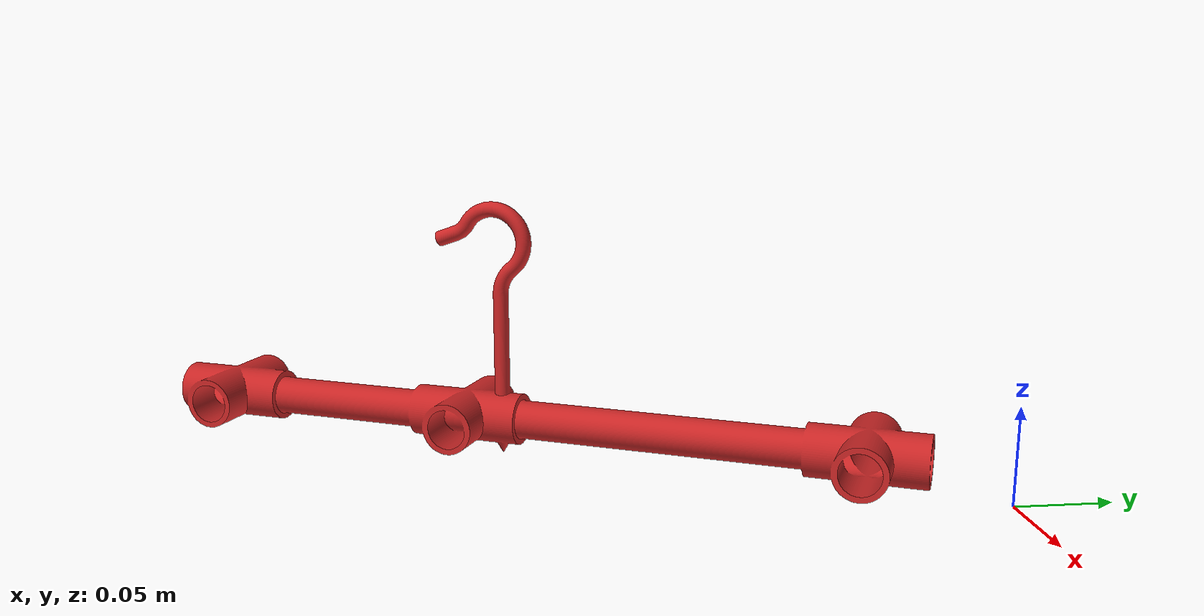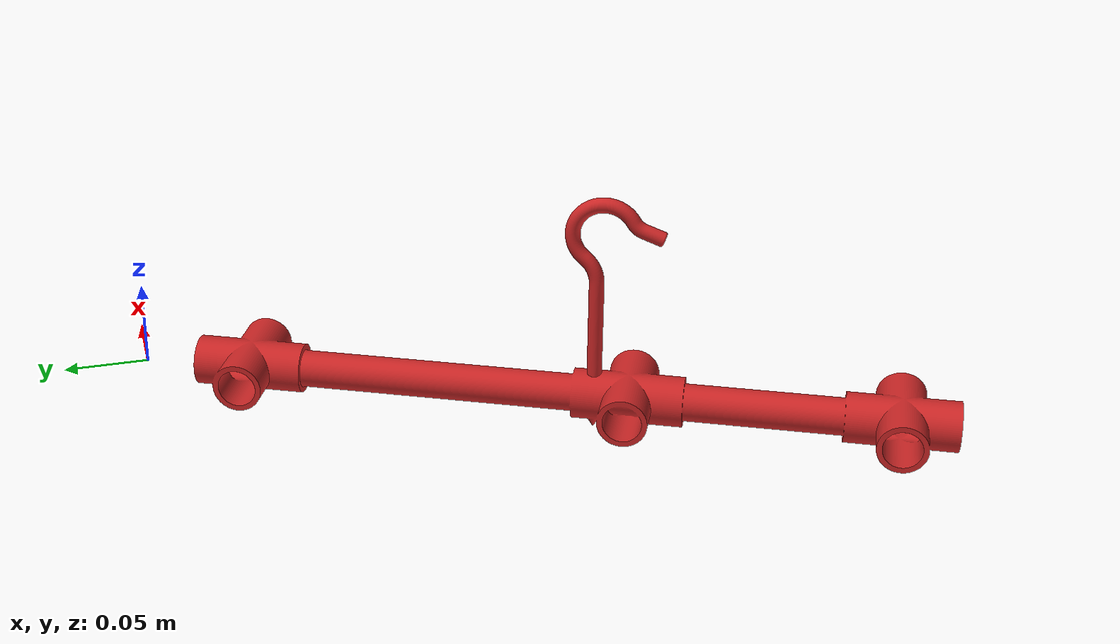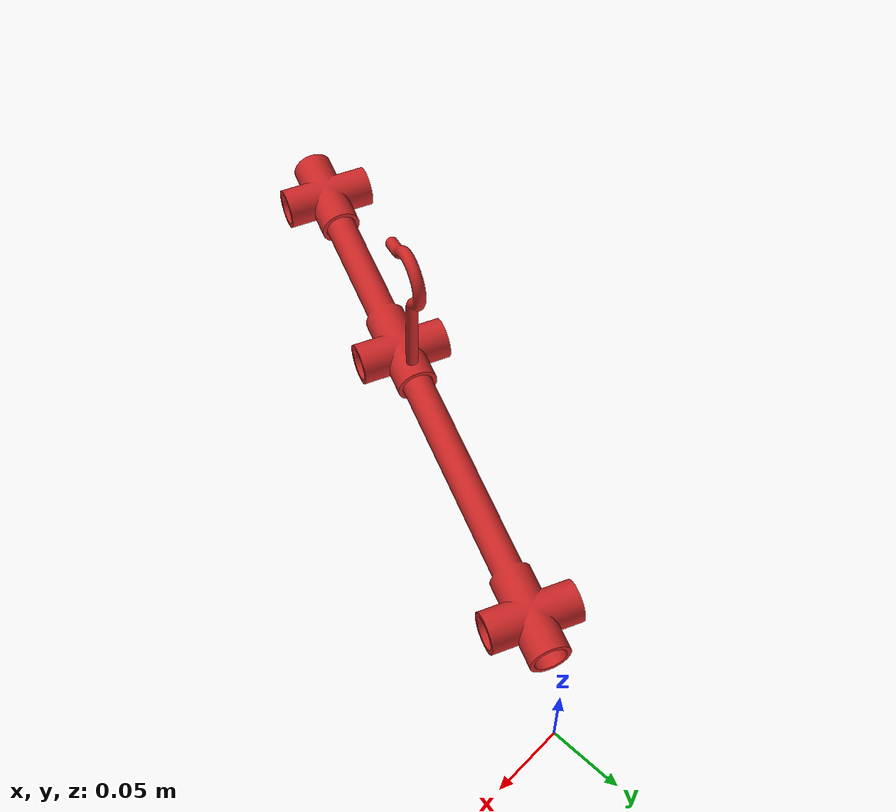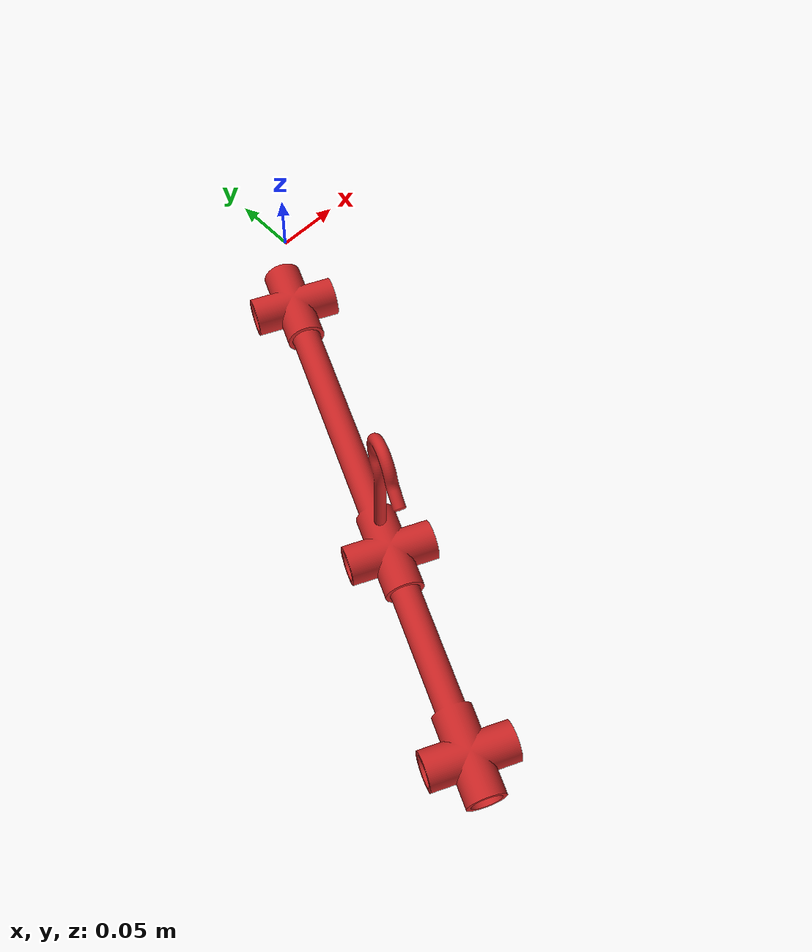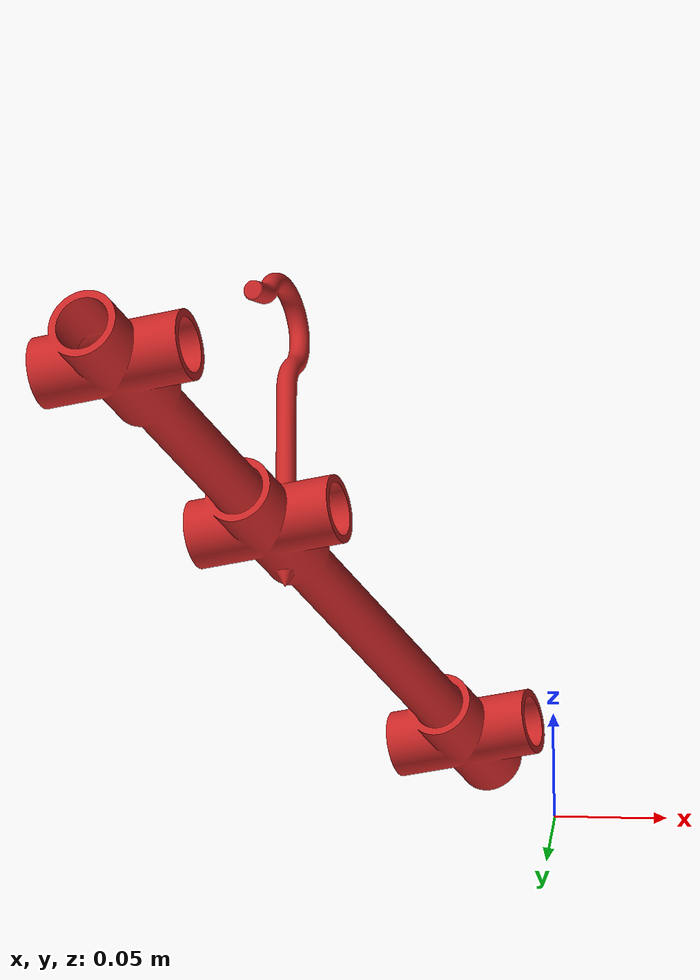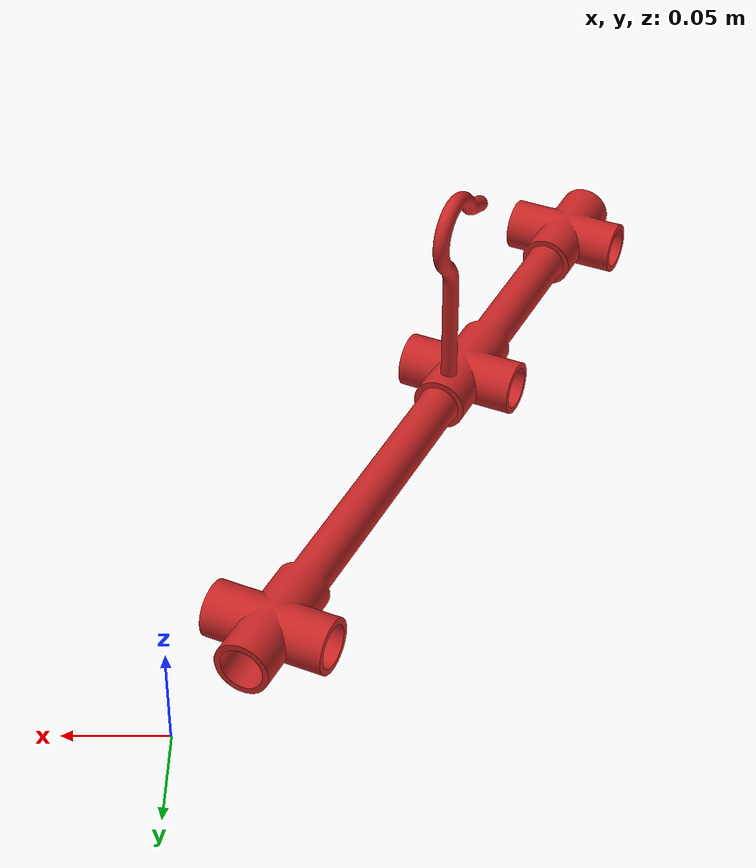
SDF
<?xml version='1.0'?>
<sdf version='1.7'>
  <model name='smart_cable_repeater'>
    <link name='part_1'>
      <inertial>
        <pose>0 0 0 0 -0 0</pose>
        <mass>2</mass>
        <inertia>
          <ixx>0</ixx>
          <ixy>0</ixy>
          <ixz>0</ixz>
          <iyy>0</iyy>
          <iyz>0</iyz>
          <izz>0</izz>
        </inertia>
      </inertial>
      <self_collide>0</self_collide>
      <enable_wind>0</enable_wind>
      <kinematic>0</kinematic>
      <pose>-0.087877 -0.216714 -0 0 -0 0</pose>
      <gravity>1</gravity>
      <frame name='part_1_frame'>
        <pose>0 0 0 0 -0 0</pose>
      </frame>
      <visual name='assembly_visual'>
        <pose>0 0 0 0 -0 0</pose>
        <geometry>
          <mesh>
            <uri>/home/eer/Documents/Software_2024/ROS2/models/smart_cable_repeater/smart_cable_repeater_visual.stl</uri>
            <scale>1 1 1</scale>
          </mesh>
        </geometry>
        <material>
          <shader type='pixel'>
            <normal_map>__default__</normal_map>
          </shader>
          <ambient>1 1 1 1</ambient>
          <diffuse>1 1 1 1</diffuse>
          <specular>1 1 1 1</specular>
          <emissive>0 0 0 1</emissive>
          <script>
            <name>Gazebo/Red</name>
            <uri>__default__</uri>
          </script>
        </material>
        <transparency>0</transparency>
        <cast_shadows>1</cast_shadows>
      </visual>
      <collision name='collision_3'>
        <laser_retro>0</laser_retro>
        <max_contacts>10</max_contacts>
        <pose>-0.03 -0.02 0.125 0 0 -0.46</pose>
        <geometry>
          <box>
            <size>0.03882 0.047348 0.01</size>
          </box>
        </geometry>
        <surface>
          <friction>
            <ode>
              <mu>1</mu>
              <mu2>1</mu2>
              <fdir1>0 0 0</fdir1>
              <slip1>0</slip1>
              <slip2>0</slip2>
            </ode>
            <torsional>
              <coefficient>1</coefficient>
              <patch_radius>0</patch_radius>
              <surface_radius>0</surface_radius>
              <use_patch_radius>1</use_patch_radius>
              <ode>
                <slip>0</slip>
              </ode>
            </torsional>
          </friction>
          <bounce>
            <restitution_coefficient>0</restitution_coefficient>
            <threshold>1e+06</threshold>
          </bounce>
          <contact>
            <collide_without_contact>0</collide_without_contact>
            <collide_without_contact_bitmask>1</collide_without_contact_bitmask>
            <collide_bitmask>1</collide_bitmask>
            <ode>
              <soft_cfm>0</soft_cfm>
              <soft_erp>0.2</soft_erp>
              <kp>1e+13</kp>
              <kd>1</kd>
              <max_vel>0.01</max_vel>
              <min_depth>0</min_depth>
            </ode>
            <bullet>
              <split_impulse>1</split_impulse>
              <split_impulse_penetration_threshold>-0.01</split_impulse_penetration_threshold>
              <soft_cfm>0</soft_cfm>
              <soft_erp>0.2</soft_erp>
              <kp>1e+13</kp>
              <kd>1</kd>
            </bullet>
          </contact>
        </surface>
      </collision>
      <collision name='collision_1'>
        <laser_retro>0</laser_retro>
        <max_contacts>10</max_contacts>
        <pose>-0.03 -0.02 0.0125 0 0 -0.46</pose>
        <geometry>
          <box>
            <size>0.04882 0.417348 0.03</size>
          </box>
        </geometry>
        <surface>
          <friction>
            <ode>
              <mu>1</mu>
              <mu2>1</mu2>
              <fdir1>0 0 0</fdir1>
              <slip1>0</slip1>
              <slip2>0</slip2>
            </ode>
            <torsional>
              <coefficient>1</coefficient>
              <patch_radius>0</patch_radius>
              <surface_radius>0</surface_radius>
              <use_patch_radius>1</use_patch_radius>
              <ode>
                <slip>0</slip>
              </ode>
            </torsional>
          </friction>
          <bounce>
            <restitution_coefficient>0</restitution_coefficient>
            <threshold>1e+06</threshold>
          </bounce>
          <contact>
            <collide_without_contact>0</collide_without_contact>
            <collide_without_contact_bitmask>1</collide_without_contact_bitmask>
            <collide_bitmask>1</collide_bitmask>
            <ode>
              <soft_cfm>0</soft_cfm>
              <soft_erp>0.2</soft_erp>
              <kp>1e+13</kp>
              <kd>1</kd>
              <max_vel>0.01</max_vel>
              <min_depth>0</min_depth>
            </ode>
            <bullet>
              <split_impulse>1</split_impulse>
              <split_impulse_penetration_threshold>-0.01</split_impulse_penetration_threshold>
              <soft_cfm>0</soft_cfm>
              <soft_erp>0.2</soft_erp>
              <kp>1e+13</kp>
              <kd>1</kd>
            </bullet>
          </contact>
        </surface>
      </collision>
      <collision name='collision_2'>
        <laser_retro>0</laser_retro>
        <max_contacts>10</max_contacts>
        <pose>-0.03 -0.02 0.075 0 0 -0.46</pose>
        <geometry>
          <box>
            <size>0.00882 0.017348 0.122249</size>
          </box>
        </geometry>
        <surface>
          <friction>
            <ode>
              <mu>1</mu>
              <mu2>1</mu2>
              <fdir1>0 0 0</fdir1>
              <slip1>0</slip1>
              <slip2>0</slip2>
            </ode>
            <torsional>
              <coefficient>1</coefficient>
              <patch_radius>0</patch_radius>
              <surface_radius>0</surface_radius>
              <use_patch_radius>1</use_patch_radius>
              <ode>
                <slip>0</slip>
              </ode>
            </torsional>
          </friction>
          <bounce>
            <restitution_coefficient>0</restitution_coefficient>
            <threshold>1e+06</threshold>
          </bounce>
          <contact>
            <collide_without_contact>0</collide_without_contact>
            <collide_without_contact_bitmask>1</collide_without_contact_bitmask>
            <collide_bitmask>1</collide_bitmask>
            <ode>
              <soft_cfm>0</soft_cfm>
              <soft_erp>0.2</soft_erp>
              <kp>1e+13</kp>
              <kd>1</kd>
              <max_vel>0.01</max_vel>
              <min_depth>0</min_depth>
            </ode>
            <bullet>
              <split_impulse>1</split_impulse>
              <split_impulse_penetration_threshold>-0.01</split_impulse_penetration_threshold>
              <soft_cfm>0</soft_cfm>
              <soft_erp>0.2</soft_erp>
              <kp>1e+13</kp>
              <kd>1</kd>
            </bullet>
          </contact>
        </surface>
      </collision>
    </link>
    <static>0</static>
    <allow_auto_disable>1</allow_auto_disable>
  </model>
</sdf>
